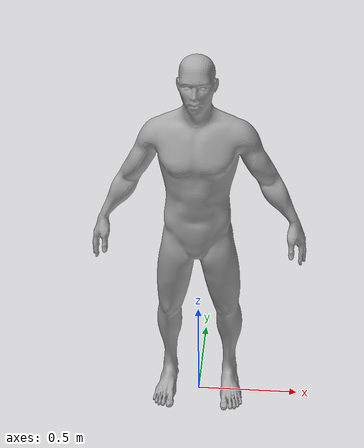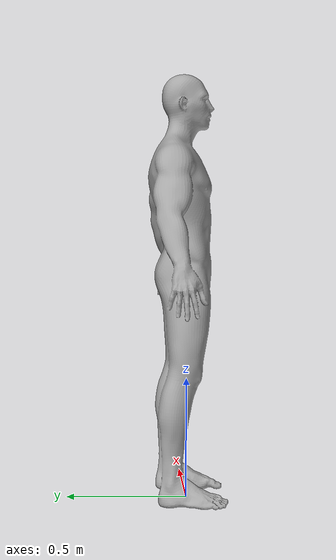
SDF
<?xml version="1.0"?>
<sdf version="1.7">
  <model name="man">
    <static>true</static>
    <link name="link">
      <pose>0 0 0 0 0 0</pose>
      <visual name="visual">
        <pose>0 0 0 1.5708 0 0</pose>
        <geometry>
          <mesh>
            <uri>model://man/FinalBaseMesh.obj</uri>
            <scale>0.085 0.085 0.085</scale>
          </mesh>
        </geometry>
        <material>
          <ambient>0.65 0.65 0.65 1</ambient>
          <diffuse>0.65 0.65 0.65 1</diffuse>
          <specular>0.1 0.1 0.1 1</specular>
        </material>
      </visual>
      <collision name="collision">
        <pose>0 -0.0027 0.8767 0 0 0</pose>
        <geometry>
          <box>
            <size>0.99 0.32 1.76</size>
          </box>
        </geometry>
      </collision>
    </link>
  </model>
</sdf>
